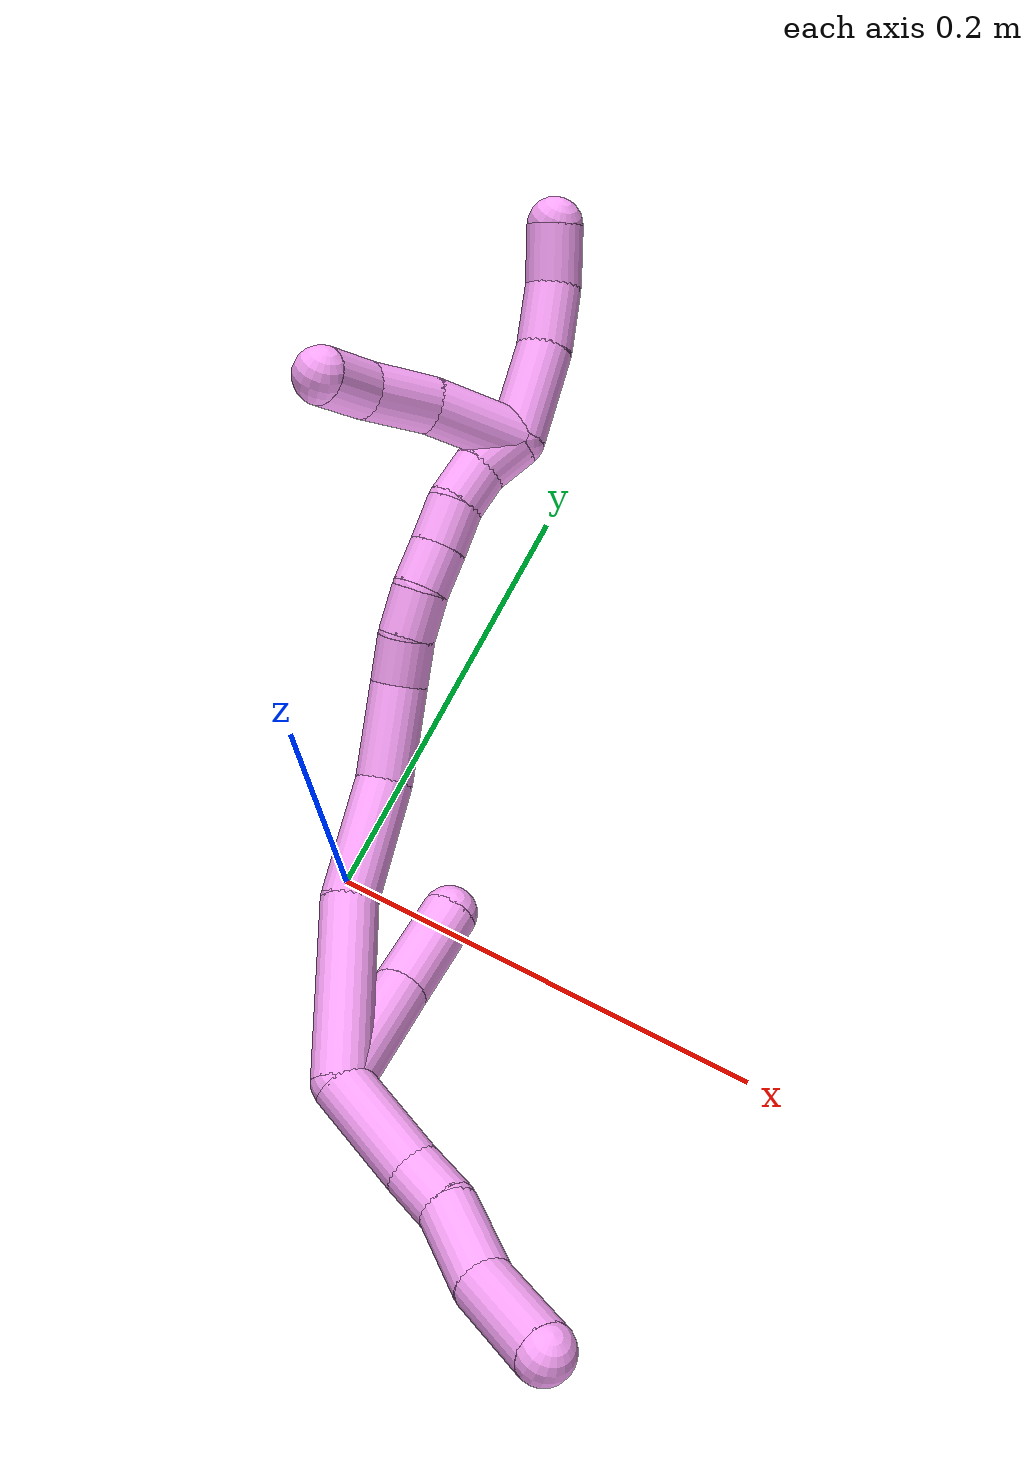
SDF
<sdf version="1.7">
 <world name="default">
  <model name="4">
   <static>0</static>
   <link name="4">
    <collision name="collision-cylinder-e_1_2_8">
     <pose>0.020963 -0.010543 -0.001333 1.69653 1.10161 1.21707</pose>
     <geometry><cylinder><radius>0.0125</radius><length>0.047006</length></cylinder></geometry>
     <surface>
      <friction><ode><mu>1.16</mu><mu2>1.16</mu2><slip1>0</slip1><slip2>0</slip2></ode></friction>
      <contact><ode><kp>1e+06</kp><kd>1</kd><max_vel>0</max_vel><min_depth>0.001</min_depth></ode></contact>
     </surface>
    </collision>
    <visual name="visual-cylinder-e_1_2_8">
     <pose>0.020963 -0.010543 -0.001333 1.69653 1.10161 1.21707</pose>
     <geometry><cylinder><radius>0.0125</radius><length>0.047006</length></cylinder></geometry>
     <material><ambient>1 0.65098 0.996078 1</ambient></material>
    </visual>
    <collision name="collision-cylinder-e_2_8_9">
     <pose>0.05142 -0.027595 0.000103 1.1687 0.930503 0.641151</pose>
     <geometry><cylinder><radius>0.0125</radius><length>0.023677</length></cylinder></geometry>
     <surface>
      <friction><ode><mu>1.16</mu><mu2>1.16</mu2><slip1>0</slip1><slip2>0</slip2></ode></friction>
      <contact><ode><kp>1e+06</kp><kd>1</kd><max_vel>0</max_vel><min_depth>0.001</min_depth></ode></contact>
     </surface>
    </collision>
    <visual name="visual-cylinder-e_2_8_9">
     <pose>0.05142 -0.027595 0.000103 1.1687 0.930503 0.641151</pose>
     <geometry><cylinder><radius>0.0125</radius><length>0.023677</length></cylinder></geometry>
     <material><ambient>1 0.65098 0.996078 1</ambient></material>
    </visual>
    <collision name="collision-cylinder-e_3_9_10">
     <pose>0.072965 -0.047381 0.005093 1.40494 0.73017 0.625847</pose>
     <geometry><cylinder><radius>0.0125</radius><length>0.036137</length></cylinder></geometry>
     <surface>
      <friction><ode><mu>1.16</mu><mu2>1.16</mu2><slip1>0</slip1><slip2>0</slip2></ode></friction>
      <contact><ode><kp>1e+06</kp><kd>1</kd><max_vel>0</max_vel><min_depth>0.001</min_depth></ode></contact>
     </surface>
    </collision>
    <visual name="visual-cylinder-e_3_9_10">
     <pose>0.072965 -0.047381 0.005093 1.40494 0.73017 0.625847</pose>
     <geometry><cylinder><radius>0.0125</radius><length>0.036137</length></cylinder></geometry>
     <material><ambient>1 0.65098 0.996078 1</ambient></material>
    </visual>
    <collision name="collision-cylinder-e_4_10_6">
     <pose>0.099404 -0.073964 0.016377 0.972931 0.729345 0.398424</pose>
     <geometry><cylinder><radius>0.0125</radius><length>0.04318</length></cylinder></geometry>
     <surface>
      <friction><ode><mu>1.16</mu><mu2>1.16</mu2><slip1>0</slip1><slip2>0</slip2></ode></friction>
      <contact><ode><kp>1e+06</kp><kd>1</kd><max_vel>0</max_vel><min_depth>0.001</min_depth></ode></contact>
     </surface>
    </collision>
    <visual name="visual-cylinder-e_4_10_6">
     <pose>0.099404 -0.073964 0.016377 0.972931 0.729345 0.398424</pose>
     <geometry><cylinder><radius>0.0125</radius><length>0.04318</length></cylinder></geometry>
     <material><ambient>1 0.65098 0.996078 1</ambient></material>
    </visual>
    <collision name="collision-cylinder-e_1_2_11">
     <pose>0.001519 0.027969 0.000918 -1.53797 0.054226 -0.052476</pose>
     <geometry><cylinder><radius>0.0125</radius><length>0.05605</length></cylinder></geometry>
     <surface>
      <friction><ode><mu>1.16</mu><mu2>1.16</mu2><slip1>0</slip1><slip2>0</slip2></ode></friction>
      <contact><ode><kp>1e+06</kp><kd>1</kd><max_vel>0</max_vel><min_depth>0.001</min_depth></ode></contact>
     </surface>
    </collision>
    <visual name="visual-cylinder-e_1_2_11">
     <pose>0.001519 0.027969 0.000918 -1.53797 0.054226 -0.052476</pose>
     <geometry><cylinder><radius>0.0125</radius><length>0.05605</length></cylinder></geometry>
     <material><ambient>1 0.65098 0.996078 1</ambient></material>
    </visual>
    <collision name="collision-cylinder-e_2_11_5">
     <pose>0.004901 0.077146 0.007279 -1.31964 0.084874 -0.065862</pose>
     <geometry><cylinder><radius>0.0125</radius><length>0.04395</length></cylinder></geometry>
     <surface>
      <friction><ode><mu>1.16</mu><mu2>1.16</mu2><slip1>0</slip1><slip2>0</slip2></ode></friction>
      <contact><ode><kp>1e+06</kp><kd>1</kd><max_vel>0</max_vel><min_depth>0.001</min_depth></ode></contact>
     </surface>
    </collision>
    <visual name="visual-cylinder-e_2_11_5">
     <pose>0.004901 0.077146 0.007279 -1.31964 0.084874 -0.065862</pose>
     <geometry><cylinder><radius>0.0125</radius><length>0.04395</length></cylinder></geometry>
     <material><ambient>1 0.65098 0.996078 1</ambient></material>
    </visual>
    <collision name="collision-cylinder-e_1_2_12">
     <pose>-0.016078 0.033242 0.013854 -1.17591 -0.419887 0.282195</pose>
     <geometry><cylinder><radius>0.0125</radius><length>0.078878</length></cylinder></geometry>
     <surface>
      <friction><ode><mu>1.16</mu><mu2>1.16</mu2><slip1>0</slip1><slip2>0</slip2></ode></friction>
      <contact><ode><kp>1e+06</kp><kd>1</kd><max_vel>0</max_vel><min_depth>0.001</min_depth></ode></contact>
     </surface>
    </collision>
    <visual name="visual-cylinder-e_1_2_12">
     <pose>-0.016078 0.033242 0.013854 -1.17591 -0.419887 0.282195</pose>
     <geometry><cylinder><radius>0.0125</radius><length>0.078878</length></cylinder></geometry>
     <material><ambient>1 0.65098 0.996078 1</ambient></material>
    </visual>
    <collision name="collision-cylinder-e_2_12_13">
     <pose>-0.037239 0.089359 0.041232 -1.0369 -0.189006 0.108046</pose>
     <geometry><cylinder><radius>0.0125</radius><length>0.054112</length></cylinder></geometry>
     <surface>
      <friction><ode><mu>1.16</mu><mu2>1.16</mu2><slip1>0</slip1><slip2>0</slip2></ode></friction>
      <contact><ode><kp>1e+06</kp><kd>1</kd><max_vel>0</max_vel><min_depth>0.001</min_depth></ode></contact>
     </surface>
    </collision>
    <visual name="visual-cylinder-e_2_12_13">
     <pose>-0.037239 0.089359 0.041232 -1.0369 -0.189006 0.108046</pose>
     <geometry><cylinder><radius>0.0125</radius><length>0.054112</length></cylinder></geometry>
     <material><ambient>1 0.65098 0.996078 1</ambient></material>
    </visual>
    <collision name="collision-cylinder-e_3_13_14">
     <pose>-0.04852 0.126142 0.070185 -0.733554 -0.289983 0.11207</pose>
     <geometry><cylinder><radius>0.0125</radius><length>0.043354</length></cylinder></geometry>
     <surface>
      <friction><ode><mu>1.16</mu><mu2>1.16</mu2><slip1>0</slip1><slip2>0</slip2></ode></friction>
      <contact><ode><kp>1e+06</kp><kd>1</kd><max_vel>0</max_vel><min_depth>0.001</min_depth></ode></contact>
     </surface>
    </collision>
    <visual name="visual-cylinder-e_3_13_14">
     <pose>-0.04852 0.126142 0.070185 -0.733554 -0.289983 0.11207</pose>
     <geometry><cylinder><radius>0.0125</radius><length>0.043354</length></cylinder></geometry>
     <material><ambient>1 0.65098 0.996078 1</ambient></material>
    </visual>
    <collision name="collision-cylinder-e_4_14_15">
     <pose>-0.05729 0.144713 0.094751 -0.471961 -0.245596 0.059337</pose>
     <geometry><cylinder><radius>0.0125</radius><length>0.021152</length></cylinder></geometry>
     <surface>
      <friction><ode><mu>1.16</mu><mu2>1.16</mu2><slip1>0</slip1><slip2>0</slip2></ode></friction>
      <contact><ode><kp>1e+06</kp><kd>1</kd><max_vel>0</max_vel><min_depth>0.001</min_depth></ode></contact>
     </surface>
    </collision>
    <visual name="visual-cylinder-e_4_14_15">
     <pose>-0.05729 0.144713 0.094751 -0.471961 -0.245596 0.059337</pose>
     <geometry><cylinder><radius>0.0125</radius><length>0.021152</length></cylinder></geometry>
     <material><ambient>1 0.65098 0.996078 1</ambient></material>
    </visual>
    <collision name="collision-cylinder-e_5_15_16">
     <pose>-0.061278 0.155347 0.112321 -0.616006 -0.136333 0.043432</pose>
     <geometry><cylinder><radius>0.0125</radius><length>0.020857</length></cylinder></geometry>
     <surface>
      <friction><ode><mu>1.16</mu><mu2>1.16</mu2><slip1>0</slip1><slip2>0</slip2></ode></friction>
      <contact><ode><kp>1e+06</kp><kd>1</kd><max_vel>0</max_vel><min_depth>0.001</min_depth></ode></contact>
     </surface>
    </collision>
    <visual name="visual-cylinder-e_5_15_16">
     <pose>-0.061278 0.155347 0.112321 -0.616006 -0.136333 0.043432</pose>
     <geometry><cylinder><radius>0.0125</radius><length>0.020857</length></cylinder></geometry>
     <material><ambient>1 0.65098 0.996078 1</ambient></material>
    </visual>
    <collision name="collision-cylinder-e_6_16_17">
     <pose>-0.063299 0.168747 0.127432 -0.83873 -0.060329 0.026902</pose>
     <geometry><cylinder><radius>0.0125</radius><length>0.020018</length></cylinder></geometry>
     <surface>
      <friction><ode><mu>1.16</mu><mu2>1.16</mu2><slip1>0</slip1><slip2>0</slip2></ode></friction>
      <contact><ode><kp>1e+06</kp><kd>1</kd><max_vel>0</max_vel><min_depth>0.001</min_depth></ode></contact>
     </surface>
    </collision>
    <visual name="visual-cylinder-e_6_16_17">
     <pose>-0.063299 0.168747 0.127432 -0.83873 -0.060329 0.026902</pose>
     <geometry><cylinder><radius>0.0125</radius><length>0.020018</length></cylinder></geometry>
     <material><ambient>1 0.65098 0.996078 1</ambient></material>
    </visual>
    <collision name="collision-cylinder-e_7_17_18">
     <pose>-0.064764 0.183838 0.14114 -0.828137 -0.082619 0.036326</pose>
     <geometry><cylinder><radius>0.0125</radius><length>0.020865</length></cylinder></geometry>
     <surface>
      <friction><ode><mu>1.16</mu><mu2>1.16</mu2><slip1>0</slip1><slip2>0</slip2></ode></friction>
      <contact><ode><kp>1e+06</kp><kd>1</kd><max_vel>0</max_vel><min_depth>0.001</min_depth></ode></contact>
     </surface>
    </collision>
    <visual name="visual-cylinder-e_7_17_18">
     <pose>-0.064764 0.183838 0.14114 -0.828137 -0.082619 0.036326</pose>
     <geometry><cylinder><radius>0.0125</radius><length>0.020865</length></cylinder></geometry>
     <material><ambient>1 0.65098 0.996078 1</ambient></material>
    </visual>
    <collision name="collision-cylinder-e_8_18_19">
     <pose>-0.064327 0.199641 0.154095 -0.941934 0.12813 -0.065308</pose>
     <geometry><cylinder><radius>0.0125</radius><length>0.020309</length></cylinder></geometry>
     <surface>
      <friction><ode><mu>1.16</mu><mu2>1.16</mu2><slip1>0</slip1><slip2>0</slip2></ode></friction>
      <contact><ode><kp>1e+06</kp><kd>1</kd><max_vel>0</max_vel><min_depth>0.001</min_depth></ode></contact>
     </surface>
    </collision>
    <visual name="visual-cylinder-e_8_18_19">
     <pose>-0.064327 0.199641 0.154095 -0.941934 0.12813 -0.065308</pose>
     <geometry><cylinder><radius>0.0125</radius><length>0.020309</length></cylinder></geometry>
     <material><ambient>1 0.65098 0.996078 1</ambient></material>
    </visual>
    <collision name="collision-cylinder-e_9_19_1">
     <pose>-0.058685 0.214697 0.16618 -0.842723 0.438776 -0.199218</pose>
     <geometry><cylinder><radius>0.0125</radius><length>0.020455</length></cylinder></geometry>
     <surface>
      <friction><ode><mu>1.16</mu><mu2>1.16</mu2><slip1>0</slip1><slip2>0</slip2></ode></friction>
      <contact><ode><kp>1e+06</kp><kd>1</kd><max_vel>0</max_vel><min_depth>0.001</min_depth></ode></contact>
     </surface>
    </collision>
    <visual name="visual-cylinder-e_9_19_1">
     <pose>-0.058685 0.214697 0.16618 -0.842723 0.438776 -0.199218</pose>
     <geometry><cylinder><radius>0.0125</radius><length>0.020455</length></cylinder></geometry>
     <material><ambient>1 0.65098 0.996078 1</ambient></material>
    </visual>
    <collision name="collision-cylinder-e_1_1_20">
     <pose>-0.072997 0.21271 0.176782 1.10789 -1.08109 -0.710933</pose>
     <geometry><cylinder><radius>0.0125</radius><length>0.042285</length></cylinder></geometry>
     <surface>
      <friction><ode><mu>1.16</mu><mu2>1.16</mu2><slip1>0</slip1><slip2>0</slip2></ode></friction>
      <contact><ode><kp>1e+06</kp><kd>1</kd><max_vel>0</max_vel><min_depth>0.001</min_depth></ode></contact>
     </surface>
    </collision>
    <visual name="visual-cylinder-e_1_1_20">
     <pose>-0.072997 0.21271 0.176782 1.10789 -1.08109 -0.710933</pose>
     <geometry><cylinder><radius>0.0125</radius><length>0.042285</length></cylinder></geometry>
     <material><ambient>1 0.65098 0.996078 1</ambient></material>
    </visual>
    <collision name="collision-cylinder-e_2_20_21">
     <pose>-0.103737 0.193729 0.184474 1.25888 -0.850895 -0.637477</pose>
     <geometry><cylinder><radius>0.0125</radius><length>0.032138</length></cylinder></geometry>
     <surface>
      <friction><ode><mu>1.16</mu><mu2>1.16</mu2><slip1>0</slip1><slip2>0</slip2></ode></friction>
      <contact><ode><kp>1e+06</kp><kd>1</kd><max_vel>0</max_vel><min_depth>0.001</min_depth></ode></contact>
     </surface>
    </collision>
    <visual name="visual-cylinder-e_2_20_21">
     <pose>-0.103737 0.193729 0.184474 1.25888 -0.850895 -0.637477</pose>
     <geometry><cylinder><radius>0.0125</radius><length>0.032138</length></cylinder></geometry>
     <material><ambient>1 0.65098 0.996078 1</ambient></material>
    </visual>
    <collision name="collision-cylinder-e_3_21_4">
     <pose>-0.122783 0.174184 0.192779 1.08022 -0.575851 -0.351472</pose>
     <geometry><cylinder><radius>0.0125</radius><length>0.025577</length></cylinder></geometry>
     <surface>
      <friction><ode><mu>1.16</mu><mu2>1.16</mu2><slip1>0</slip1><slip2>0</slip2></ode></friction>
      <contact><ode><kp>1e+06</kp><kd>1</kd><max_vel>0</max_vel><min_depth>0.001</min_depth></ode></contact>
     </surface>
    </collision>
    <visual name="visual-cylinder-e_3_21_4">
     <pose>-0.122783 0.174184 0.192779 1.08022 -0.575851 -0.351472</pose>
     <geometry><cylinder><radius>0.0125</radius><length>0.025577</length></cylinder></geometry>
     <material><ambient>1 0.65098 0.996078 1</ambient></material>
    </visual>
    <collision name="collision-cylinder-e_1_1_22">
     <pose>-0.057887 0.238907 0.185203 -0.931485 -0.163105 0.082116</pose>
     <geometry><cylinder><radius>0.0125</radius><length>0.043691</length></cylinder></geometry>
     <surface>
      <friction><ode><mu>1.16</mu><mu2>1.16</mu2><slip1>0</slip1><slip2>0</slip2></ode></friction>
      <contact><ode><kp>1e+06</kp><kd>1</kd><max_vel>0</max_vel><min_depth>0.001</min_depth></ode></contact>
     </surface>
    </collision>
    <visual name="visual-cylinder-e_1_1_22">
     <pose>-0.057887 0.238907 0.185203 -0.931485 -0.163105 0.082116</pose>
     <geometry><cylinder><radius>0.0125</radius><length>0.043691</length></cylinder></geometry>
     <material><ambient>1 0.65098 0.996078 1</ambient></material>
    </visual>
    <collision name="collision-cylinder-e_2_22_23">
     <pose>-0.065832 0.266612 0.207572 -0.830516 -0.30244 0.134169</pose>
     <geometry><cylinder><radius>0.0125</radius><length>0.029533</length></cylinder></geometry>
     <surface>
      <friction><ode><mu>1.16</mu><mu2>1.16</mu2><slip1>0</slip1><slip2>0</slip2></ode></friction>
      <contact><ode><kp>1e+06</kp><kd>1</kd><max_vel>0</max_vel><min_depth>0.001</min_depth></ode></contact>
     </surface>
    </collision>
    <visual name="visual-cylinder-e_2_22_23">
     <pose>-0.065832 0.266612 0.207572 -0.830516 -0.30244 0.134169</pose>
     <geometry><cylinder><radius>0.0125</radius><length>0.029533</length></cylinder></geometry>
     <material><ambient>1 0.65098 0.996078 1</ambient></material>
    </visual>
    <collision name="collision-cylinder-e_3_23_3">
     <pose>-0.075358 0.283069 0.227866 -0.511097 -0.392994 0.103922</pose>
     <geometry><cylinder><radius>0.0125</radius><length>0.026776</length></cylinder></geometry>
     <surface>
      <friction><ode><mu>1.16</mu><mu2>1.16</mu2><slip1>0</slip1><slip2>0</slip2></ode></friction>
      <contact><ode><kp>1e+06</kp><kd>1</kd><max_vel>0</max_vel><min_depth>0.001</min_depth></ode></contact>
     </surface>
    </collision>
    <visual name="visual-cylinder-e_3_23_3">
     <pose>-0.075358 0.283069 0.227866 -0.511097 -0.392994 0.103922</pose>
     <geometry><cylinder><radius>0.0125</radius><length>0.026776</length></cylinder></geometry>
     <material><ambient>1 0.65098 0.996078 1</ambient></material>
    </visual>
    <collision name="collision-sphere-3">
     <pose>-0.080485 0.289118 0.238653 0 -0 0</pose>
     <geometry><sphere><radius>0.0125</radius></sphere></geometry>
     <surface>
      <friction><ode><mu>1.16</mu><mu2>1.16</mu2><slip1>0</slip1><slip2>0</slip2></ode></friction>
      <contact><ode><kp>1e+06</kp><kd>1</kd><max_vel>0</max_vel><min_depth>0.001</min_depth></ode></contact>
     </surface>
    </collision>
    <visual name="visual-sphere-3">
     <pose>-0.080485 0.289118 0.238653 0 -0 0</pose>
     <geometry><sphere><radius>0.0125</radius></sphere></geometry>
     <material><ambient>1 0.65098 0.996078 1</ambient></material>
    </visual>
    <collision name="collision-sphere-23">
     <pose>-0.070231 0.277019 0.217079 0 -0 0</pose>
     <geometry><sphere><radius>0.0125</radius></sphere></geometry>
     <surface>
      <friction><ode><mu>1.16</mu><mu2>1.16</mu2><slip1>0</slip1><slip2>0</slip2></ode></friction>
      <contact><ode><kp>1e+06</kp><kd>1</kd><max_vel>0</max_vel><min_depth>0.001</min_depth></ode></contact>
     </surface>
    </collision>
    <visual name="visual-sphere-23">
     <pose>-0.070231 0.277019 0.217079 0 -0 0</pose>
     <geometry><sphere><radius>0.0125</radius></sphere></geometry>
     <material><ambient>1 0.65098 0.996078 1</ambient></material>
    </visual>
    <collision name="collision-sphere-22">
     <pose>-0.061434 0.256205 0.198064 0 -0 0</pose>
     <geometry><sphere><radius>0.0125</radius></sphere></geometry>
     <surface>
      <friction><ode><mu>1.16</mu><mu2>1.16</mu2><slip1>0</slip1><slip2>0</slip2></ode></friction>
      <contact><ode><kp>1e+06</kp><kd>1</kd><max_vel>0</max_vel><min_depth>0.001</min_depth></ode></contact>
     </surface>
    </collision>
    <visual name="visual-sphere-22">
     <pose>-0.061434 0.256205 0.198064 0 -0 0</pose>
     <geometry><sphere><radius>0.0125</radius></sphere></geometry>
     <material><ambient>1 0.65098 0.996078 1</ambient></material>
    </visual>
    <collision name="collision-sphere-4">
     <pose>-0.129747 0.164724 0.197833 0 -0 0</pose>
     <geometry><sphere><radius>0.0125</radius></sphere></geometry>
     <surface>
      <friction><ode><mu>1.16</mu><mu2>1.16</mu2><slip1>0</slip1><slip2>0</slip2></ode></friction>
      <contact><ode><kp>1e+06</kp><kd>1</kd><max_vel>0</max_vel><min_depth>0.001</min_depth></ode></contact>
     </surface>
    </collision>
    <visual name="visual-sphere-4">
     <pose>-0.129747 0.164724 0.197833 0 -0 0</pose>
     <geometry><sphere><radius>0.0125</radius></sphere></geometry>
     <material><ambient>1 0.65098 0.996078 1</ambient></material>
    </visual>
    <collision name="collision-sphere-21">
     <pose>-0.115819 0.183645 0.187726 0 -0 0</pose>
     <geometry><sphere><radius>0.0125</radius></sphere></geometry>
     <surface>
      <friction><ode><mu>1.16</mu><mu2>1.16</mu2><slip1>0</slip1><slip2>0</slip2></ode></friction>
      <contact><ode><kp>1e+06</kp><kd>1</kd><max_vel>0</max_vel><min_depth>0.001</min_depth></ode></contact>
     </surface>
    </collision>
    <visual name="visual-sphere-21">
     <pose>-0.115819 0.183645 0.187726 0 -0 0</pose>
     <geometry><sphere><radius>0.0125</radius></sphere></geometry>
     <material><ambient>1 0.65098 0.996078 1</ambient></material>
    </visual>
    <collision name="collision-sphere-20">
     <pose>-0.091655 0.203812 0.181223 0 -0 0</pose>
     <geometry><sphere><radius>0.0125</radius></sphere></geometry>
     <surface>
      <friction><ode><mu>1.16</mu><mu2>1.16</mu2><slip1>0</slip1><slip2>0</slip2></ode></friction>
      <contact><ode><kp>1e+06</kp><kd>1</kd><max_vel>0</max_vel><min_depth>0.001</min_depth></ode></contact>
     </surface>
    </collision>
    <visual name="visual-sphere-20">
     <pose>-0.091655 0.203812 0.181223 0 -0 0</pose>
     <geometry><sphere><radius>0.0125</radius></sphere></geometry>
     <material><ambient>1 0.65098 0.996078 1</ambient></material>
    </visual>
    <collision name="collision-sphere-11">
     <pose>0.003038 0.055937 0.001837 0 -0 0</pose>
     <geometry><sphere><radius>0.0125</radius></sphere></geometry>
     <surface>
      <friction><ode><mu>1.16</mu><mu2>1.16</mu2><slip1>0</slip1><slip2>0</slip2></ode></friction>
      <contact><ode><kp>1e+06</kp><kd>1</kd><max_vel>0</max_vel><min_depth>0.001</min_depth></ode></contact>
     </surface>
    </collision>
    <visual name="visual-sphere-11">
     <pose>0.003038 0.055937 0.001837 0 -0 0</pose>
     <geometry><sphere><radius>0.0125</radius></sphere></geometry>
     <material><ambient>1 0.65098 0.996078 1</ambient></material>
    </visual>
    <collision name="collision-sphere-6">
     <pose>0.113791 -0.087269 0.025438 0 -0 0</pose>
     <geometry><sphere><radius>0.0125</radius></sphere></geometry>
     <surface>
      <friction><ode><mu>1.16</mu><mu2>1.16</mu2><slip1>0</slip1><slip2>0</slip2></ode></friction>
      <contact><ode><kp>1e+06</kp><kd>1</kd><max_vel>0</max_vel><min_depth>0.001</min_depth></ode></contact>
     </surface>
    </collision>
    <visual name="visual-sphere-6">
     <pose>0.113791 -0.087269 0.025438 0 -0 0</pose>
     <geometry><sphere><radius>0.0125</radius></sphere></geometry>
     <material><ambient>1 0.65098 0.996078 1</ambient></material>
    </visual>
    <collision name="collision-sphere-10">
     <pose>0.085017 -0.060658 0.007316 0 -0 0</pose>
     <geometry><sphere><radius>0.0125</radius></sphere></geometry>
     <surface>
      <friction><ode><mu>1.16</mu><mu2>1.16</mu2><slip1>0</slip1><slip2>0</slip2></ode></friction>
      <contact><ode><kp>1e+06</kp><kd>1</kd><max_vel>0</max_vel><min_depth>0.001</min_depth></ode></contact>
     </surface>
    </collision>
    <visual name="visual-sphere-10">
     <pose>0.085017 -0.060658 0.007316 0 -0 0</pose>
     <geometry><sphere><radius>0.0125</radius></sphere></geometry>
     <material><ambient>1 0.65098 0.996078 1</ambient></material>
    </visual>
    <collision name="collision-sphere-9">
     <pose>0.060913 -0.034104 0.00287 0 -0 0</pose>
     <geometry><sphere><radius>0.0125</radius></sphere></geometry>
     <surface>
      <friction><ode><mu>1.16</mu><mu2>1.16</mu2><slip1>0</slip1><slip2>0</slip2></ode></friction>
      <contact><ode><kp>1e+06</kp><kd>1</kd><max_vel>0</max_vel><min_depth>0.001</min_depth></ode></contact>
     </surface>
    </collision>
    <visual name="visual-sphere-9">
     <pose>0.060913 -0.034104 0.00287 0 -0 0</pose>
     <geometry><sphere><radius>0.0125</radius></sphere></geometry>
     <material><ambient>1 0.65098 0.996078 1</ambient></material>
    </visual>
    <collision name="collision-sphere-2">
     <geometry><sphere><radius>0.0125</radius></sphere></geometry>
     <surface>
      <friction><ode><mu>1.16</mu><mu2>1.16</mu2><slip1>0</slip1><slip2>0</slip2></ode></friction>
      <contact><ode><kp>1e+06</kp><kd>1</kd><max_vel>0</max_vel><min_depth>0.001</min_depth></ode></contact>
     </surface>
    </collision>
    <visual name="visual-sphere-2">
     <geometry><sphere><radius>0.0125</radius></sphere></geometry>
     <material><ambient>1 0.65098 0.996078 1</ambient></material>
    </visual>
    <collision name="collision-sphere-19">
     <pose>-0.06303 0.207786 0.160019 0 -0 0</pose>
     <geometry><sphere><radius>0.0125</radius></sphere></geometry>
     <surface>
      <friction><ode><mu>1.16</mu><mu2>1.16</mu2><slip1>0</slip1><slip2>0</slip2></ode></friction>
      <contact><ode><kp>1e+06</kp><kd>1</kd><max_vel>0</max_vel><min_depth>0.001</min_depth></ode></contact>
     </surface>
    </collision>
    <visual name="visual-sphere-19">
     <pose>-0.06303 0.207786 0.160019 0 -0 0</pose>
     <geometry><sphere><radius>0.0125</radius></sphere></geometry>
     <material><ambient>1 0.65098 0.996078 1</ambient></material>
    </visual>
    <collision name="collision-sphere-8">
     <pose>0.041926 -0.021086 -0.002665 0 -0 0</pose>
     <geometry><sphere><radius>0.0125</radius></sphere></geometry>
     <surface>
      <friction><ode><mu>1.16</mu><mu2>1.16</mu2><slip1>0</slip1><slip2>0</slip2></ode></friction>
      <contact><ode><kp>1e+06</kp><kd>1</kd><max_vel>0</max_vel><min_depth>0.001</min_depth></ode></contact>
     </surface>
    </collision>
    <visual name="visual-sphere-8">
     <pose>0.041926 -0.021086 -0.002665 0 -0 0</pose>
     <geometry><sphere><radius>0.0125</radius></sphere></geometry>
     <material><ambient>1 0.65098 0.996078 1</ambient></material>
    </visual>
    <collision name="collision-sphere-5">
     <pose>0.006764 0.098355 0.01272 0 -0 0</pose>
     <geometry><sphere><radius>0.0125</radius></sphere></geometry>
     <surface>
      <friction><ode><mu>1.16</mu><mu2>1.16</mu2><slip1>0</slip1><slip2>0</slip2></ode></friction>
      <contact><ode><kp>1e+06</kp><kd>1</kd><max_vel>0</max_vel><min_depth>0.001</min_depth></ode></contact>
     </surface>
    </collision>
    <visual name="visual-sphere-5">
     <pose>0.006764 0.098355 0.01272 0 -0 0</pose>
     <geometry><sphere><radius>0.0125</radius></sphere></geometry>
     <material><ambient>1 0.65098 0.996078 1</ambient></material>
    </visual>
    <collision name="collision-sphere-12">
     <pose>-0.032155 0.066483 0.027709 0 -0 0</pose>
     <geometry><sphere><radius>0.0125</radius></sphere></geometry>
     <surface>
      <friction><ode><mu>1.16</mu><mu2>1.16</mu2><slip1>0</slip1><slip2>0</slip2></ode></friction>
      <contact><ode><kp>1e+06</kp><kd>1</kd><max_vel>0</max_vel><min_depth>0.001</min_depth></ode></contact>
     </surface>
    </collision>
    <visual name="visual-sphere-12">
     <pose>-0.032155 0.066483 0.027709 0 -0 0</pose>
     <geometry><sphere><radius>0.0125</radius></sphere></geometry>
     <material><ambient>1 0.65098 0.996078 1</ambient></material>
    </visual>
    <collision name="collision-sphere-13">
     <pose>-0.042322 0.112235 0.054755 0 -0 0</pose>
     <geometry><sphere><radius>0.0125</radius></sphere></geometry>
     <surface>
      <friction><ode><mu>1.16</mu><mu2>1.16</mu2><slip1>0</slip1><slip2>0</slip2></ode></friction>
      <contact><ode><kp>1e+06</kp><kd>1</kd><max_vel>0</max_vel><min_depth>0.001</min_depth></ode></contact>
     </surface>
    </collision>
    <visual name="visual-sphere-13">
     <pose>-0.042322 0.112235 0.054755 0 -0 0</pose>
     <geometry><sphere><radius>0.0125</radius></sphere></geometry>
     <material><ambient>1 0.65098 0.996078 1</ambient></material>
    </visual>
    <collision name="collision-sphere-14">
     <pose>-0.054718 0.140049 0.085614 0 -0 0</pose>
     <geometry><sphere><radius>0.0125</radius></sphere></geometry>
     <surface>
      <friction><ode><mu>1.16</mu><mu2>1.16</mu2><slip1>0</slip1><slip2>0</slip2></ode></friction>
      <contact><ode><kp>1e+06</kp><kd>1</kd><max_vel>0</max_vel><min_depth>0.001</min_depth></ode></contact>
     </surface>
    </collision>
    <visual name="visual-sphere-14">
     <pose>-0.054718 0.140049 0.085614 0 -0 0</pose>
     <geometry><sphere><radius>0.0125</radius></sphere></geometry>
     <material><ambient>1 0.65098 0.996078 1</ambient></material>
    </visual>
    <collision name="collision-sphere-15">
     <pose>-0.059861 0.149377 0.103888 0 -0 0</pose>
     <geometry><sphere><radius>0.0125</radius></sphere></geometry>
     <surface>
      <friction><ode><mu>1.16</mu><mu2>1.16</mu2><slip1>0</slip1><slip2>0</slip2></ode></friction>
      <contact><ode><kp>1e+06</kp><kd>1</kd><max_vel>0</max_vel><min_depth>0.001</min_depth></ode></contact>
     </surface>
    </collision>
    <visual name="visual-sphere-15">
     <pose>-0.059861 0.149377 0.103888 0 -0 0</pose>
     <geometry><sphere><radius>0.0125</radius></sphere></geometry>
     <material><ambient>1 0.65098 0.996078 1</ambient></material>
    </visual>
    <collision name="collision-sphere-16">
     <pose>-0.062696 0.161316 0.120754 0 -0 0</pose>
     <geometry><sphere><radius>0.0125</radius></sphere></geometry>
     <surface>
      <friction><ode><mu>1.16</mu><mu2>1.16</mu2><slip1>0</slip1><slip2>0</slip2></ode></friction>
      <contact><ode><kp>1e+06</kp><kd>1</kd><max_vel>0</max_vel><min_depth>0.001</min_depth></ode></contact>
     </surface>
    </collision>
    <visual name="visual-sphere-16">
     <pose>-0.062696 0.161316 0.120754 0 -0 0</pose>
     <geometry><sphere><radius>0.0125</radius></sphere></geometry>
     <material><ambient>1 0.65098 0.996078 1</ambient></material>
    </visual>
    <collision name="collision-sphere-17">
     <pose>-0.063903 0.176179 0.13411 0 -0 0</pose>
     <geometry><sphere><radius>0.0125</radius></sphere></geometry>
     <surface>
      <friction><ode><mu>1.16</mu><mu2>1.16</mu2><slip1>0</slip1><slip2>0</slip2></ode></friction>
      <contact><ode><kp>1e+06</kp><kd>1</kd><max_vel>0</max_vel><min_depth>0.001</min_depth></ode></contact>
     </surface>
    </collision>
    <visual name="visual-sphere-17">
     <pose>-0.063903 0.176179 0.13411 0 -0 0</pose>
     <geometry><sphere><radius>0.0125</radius></sphere></geometry>
     <material><ambient>1 0.65098 0.996078 1</ambient></material>
    </visual>
    <collision name="collision-sphere-18">
     <pose>-0.065625 0.191497 0.148171 0 -0 0</pose>
     <geometry><sphere><radius>0.0125</radius></sphere></geometry>
     <surface>
      <friction><ode><mu>1.16</mu><mu2>1.16</mu2><slip1>0</slip1><slip2>0</slip2></ode></friction>
      <contact><ode><kp>1e+06</kp><kd>1</kd><max_vel>0</max_vel><min_depth>0.001</min_depth></ode></contact>
     </surface>
    </collision>
    <visual name="visual-sphere-18">
     <pose>-0.065625 0.191497 0.148171 0 -0 0</pose>
     <geometry><sphere><radius>0.0125</radius></sphere></geometry>
     <material><ambient>1 0.65098 0.996078 1</ambient></material>
    </visual>
    <collision name="collision-sphere-1">
     <pose>-0.05434 0.221608 0.172342 0 -0 0</pose>
     <geometry><sphere><radius>0.0125</radius></sphere></geometry>
     <surface>
      <friction><ode><mu>1.16</mu><mu2>1.16</mu2><slip1>0</slip1><slip2>0</slip2></ode></friction>
      <contact><ode><kp>1e+06</kp><kd>1</kd><max_vel>0</max_vel><min_depth>0.001</min_depth></ode></contact>
     </surface>
    </collision>
    <visual name="visual-sphere-1">
     <pose>-0.05434 0.221608 0.172342 0 -0 0</pose>
     <geometry><sphere><radius>0.0125</radius></sphere></geometry>
     <material><ambient>1 0.65098 0.996078 1</ambient></material>
    </visual>
    <inertial>
     <pose>-0.026162 0.10581 0.083464 0 -0 0</pose>
     <mass>0.75</mass>
     <inertia>
      <ixx>0.000145</ixx>
      <ixy>0</ixy>
      <ixz>0</ixz>
      <iyy>0.000122</iyy>
      <iyz>0</iyz>
      <izz>-3.5e-05</izz>
     </inertia>
    </inertial>
   </link>
   <pose>0.050562 -0.085428 0.056115 -0.550975 0.087599 0.035222</pose>
  </model>
 </world>
</sdf>
